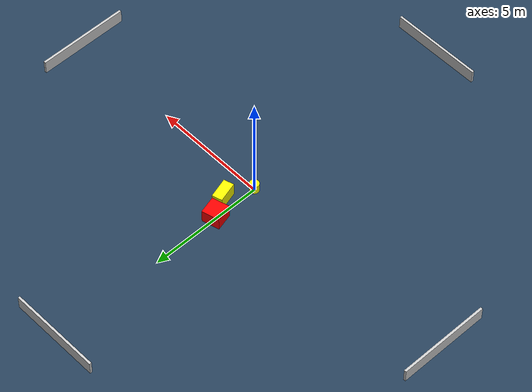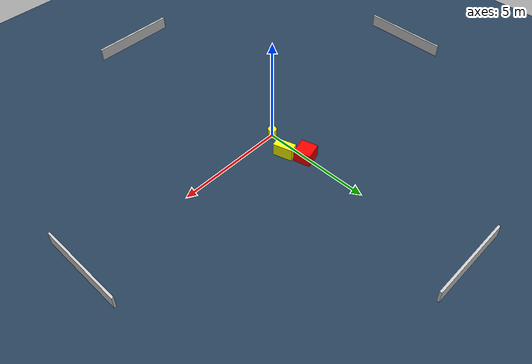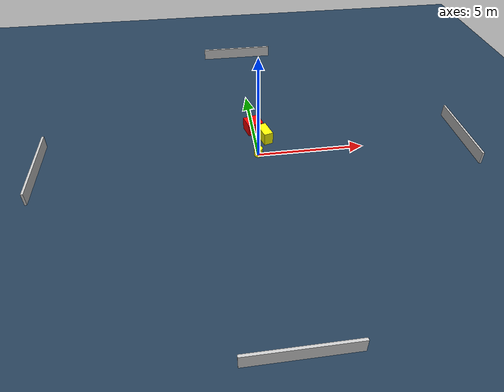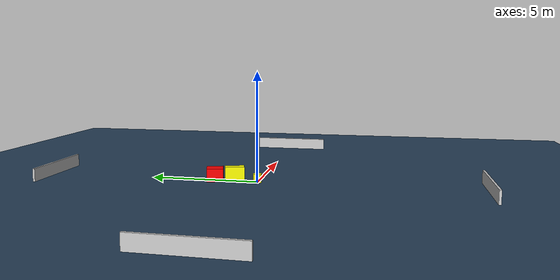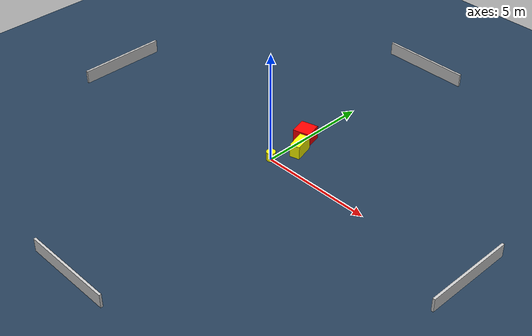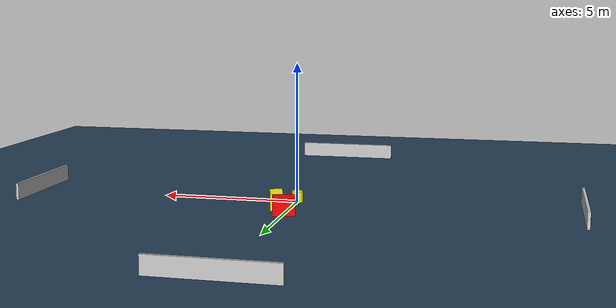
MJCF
<?xml version="1.0" ?>
<mujoco model="generated_environment">
  <option timestep="0.01" integrator="RK4" cone="elliptic"/>
  <default>
    <geom density="1"/>
  </default>
  <asset>
    <texture builtin="gradient" height="3072" name="skybox" rgb1="0.3 0.5 0.7" rgb2="0 0 0" type="skybox" width="512"/>
    <texture builtin="checker" height="300" name="groundplane" rgb1="0.2 0.3 0.4" rgb2="0.1 0.2 0.3" type="2d" width="300"/>
    <material name="groundplane" reflectance="0.2" texrepeat="5 5" texture="groundplane"/>
  </asset>
  <worldbody>
    <light dir="0 0 -1" directional="true" pos="0 0 1.5"/>
    <geom condim="3" friction="0.5 0.005 0.001" material="groundplane" name="floor" pos="0 0 0" size="0 0 0.05" type="plane"/>
    <body name="walls">
      <geom name="wall_1" condim="4" pos="-10.0 0.0 0.3" rgba="0.800000011920929 0.800000011920929 0.800000011920929 1.0" size="0.05 2.0 0.3" type="box"/>
      <geom name="wall_2" condim="4" pos="10.0 0.0 0.3" rgba="0.800000011920929 0.800000011920929 0.800000011920929 1.0" size="0.05 2.0 0.3" type="box"/>
      <geom name="wall_3" condim="4" pos="0.0 -10.0 0.3" rgba="0.800000011920929 0.800000011920929 0.800000011920929 1.0" size="2.0 0.05 0.3" type="box"/>
      <geom name="wall_4" condim="4" pos="0.0 10.0 0.3" rgba="0.800000011920929 0.800000011920929 0.800000011920929 1.0" size="2.0 0.05 0.3" type="box"/>
    </body>
    <body name="robot">
      <joint name="joint_x" type="slide" pos="0 0 0" axis="1 0 0"/>
      <joint name="joint_y" type="slide" pos="0 0 0" axis="0 1 0"/>
      <geom name="robot" type="cylinder" pos="0.0 0.0 0.2" size="0.2 0.2 0.0" mass="5.0" friction="1.0 0.005 0.0001" condim="4" rgba="1.0 1.0 0.0 1.0"/>
    </body>
    <body name="obstacle_1_movable">
      <geom name="obstacle_1_movable" condim="4" pos="0.48357119881521193 1.188356979092946 0.3" euler="0 0 196.07123888734972" friction="0.0 0.005 0.001" rgba="1.0 1.0 0.0 1.0" size="0.22222876656289597 0.4446227920899103 0.3" type="box" mass="0.1"/>
      <joint type="free"/>
    </body>
    <body name="obstacle_2_static">
      <geom name="obstacle_2_static" condim="4" pos="0.018507469492366105 1.997191865795111 0.3" euler="0 0 194.8247379029241" friction="0.0 0.005 0.001" rgba="1.0 0.0 0.0 1.0" size="0.38417654182450356 0.37880142034261505 0.3" type="box"/>
    </body>
  </worldbody>
  <actuator>
    <motor name="actuator_x" joint="joint_x" gear="1" ctrlrange="-1 1"/>
    <motor name="actuator_y" joint="joint_y" gear="1" ctrlrange="-1 1"/>
  </actuator>
</mujoco>
